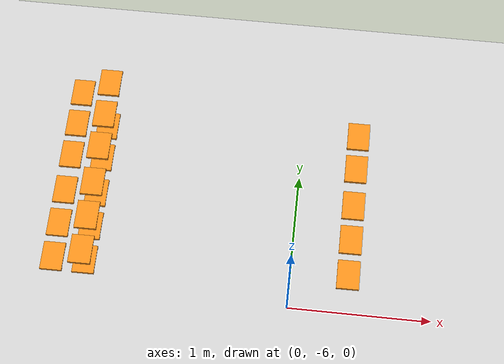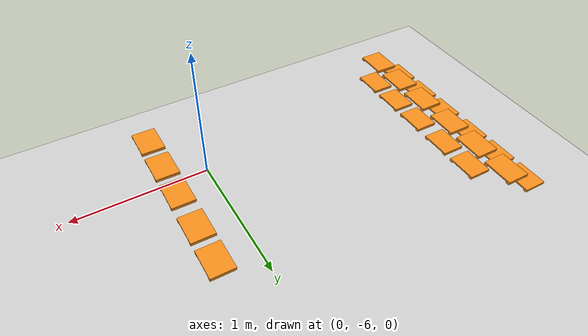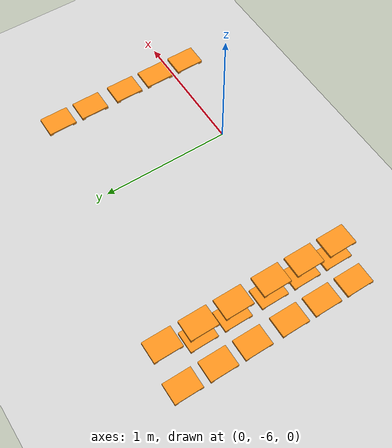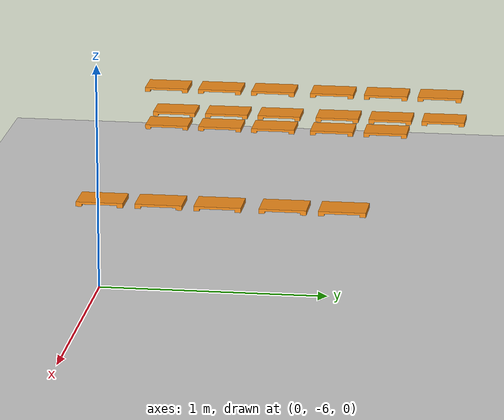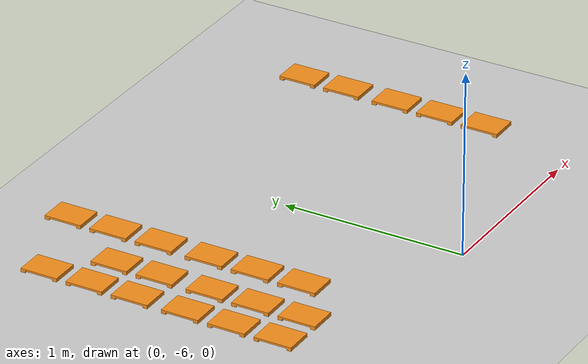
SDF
<sdf version="1.7">
 <world name="default">
  <model name="ground_plane">
   <static>1</static>
   <link name="link">
    <collision name="collision">
     <geometry><plane><normal>0 0 1</normal><size>100 100</size></plane></geometry>
     <surface>
      <contact><collide_bitmask>65535</collide_bitmask></contact>
      <friction><ode><mu>1</mu><mu2>1</mu2></ode></friction>
     </surface>
    </collision>
    <visual name="visual">
     <cast_shadows>0</cast_shadows>
     <geometry><plane><normal>0 0 1</normal><size>100 100</size></plane></geometry>
     <material>
      <script><uri>file://media/materials/scripts/gazebo.material</uri><name>Gazebo/Grey</name></script>
     </material>
    </visual>
   </link>
  </model>
  <model name="pallet_127">
   <pose>-1.61446 -4.887 0.33096 2.2e-05 -0.013419 -8e-06</pose>
   <link name="link">
    <inertial>
     <pose>0 0 0 0 -0 1.571</pose>
     <inertia>
      <ixx>0.00220983</ixx>
      <ixy>0</ixy>
      <ixz>0</ixz>
      <iyy>0.00128087</iyy>
      <iyz>0</iyz>
      <izz>0.00244903</izz>
     </inertia>
     <mass>0.01</mass>
    </inertial>
    <visual name="visual1">
     <cast_shadows>0</cast_shadows>
     <geometry><mesh><uri>model://pallet/meshes/pallet.stl</uri></mesh></geometry>
     <material>
      <script><uri>file://media/materials/scripts/gazebo.material</uri><name>Gazebo/Orange</name></script>
      <shader type="pixel"><normal_map>__default__</normal_map></shader>
      <emissive>0 0 0 1</emissive>
     </material>
     <pose>0 0 -0 0 -0 1.571</pose>
    </visual>
    <collision name="collision_0">
     <pose>0 0 0 0 -0 1.571</pose>
     <geometry><mesh><uri>model://pallet/meshes/pallet.stl</uri></mesh></geometry>
     <surface>
      <friction>
       <ode><mu>1</mu><mu2>1</mu2><fdir1>0 0 0</fdir1><slip1>0</slip1><slip2>0</slip2></ode>
       <torsional>
        <coefficient>1</coefficient>
        <patch_radius>0</patch_radius>
        <surface_radius>0</surface_radius>
        <use_patch_radius>1</use_patch_radius>
        <ode><slip>0</slip></ode>
       </torsional>
      </friction>
      <bounce><restitution_coefficient>0</restitution_coefficient><threshold>1e+06</threshold></bounce>
      <contact>
       <collide_without_contact>0</collide_without_contact>
       <collide_without_contact_bitmask>1</collide_without_contact_bitmask>
       <collide_bitmask>1</collide_bitmask>
       <ode>
        <soft_cfm>0</soft_cfm>
        <soft_erp>0.2</soft_erp>
        <kp>1e+13</kp>
        <kd>1</kd>
        <max_vel>0.01</max_vel>
        <min_depth>0</min_depth>
       </ode>
       <bullet>
        <split_impulse>1</split_impulse>
        <split_impulse_penetration_threshold>-0.01</split_impulse_penetration_threshold>
        <soft_cfm>0</soft_cfm>
        <soft_erp>0.2</soft_erp>
        <kp>1e+13</kp>
        <kd>1</kd>
       </bullet>
      </contact>
     </surface>
    </collision>
   </link>
   <static>0</static>
  </model>
  <model name="pallet_128">
   <pose>-1.61446 -4.637 0.330962 1.1e-05 -0.013419 5e-06</pose>
   <link name="link">
    <inertial>
     <pose>0 0 0 0 -0 1.571</pose>
     <inertia>
      <ixx>0.00220983</ixx>
      <ixy>0</ixy>
      <ixz>0</ixz>
      <iyy>0.00128087</iyy>
      <iyz>0</iyz>
      <izz>0.00244903</izz>
     </inertia>
     <mass>0.01</mass>
    </inertial>
    <visual name="visual1">
     <cast_shadows>0</cast_shadows>
     <geometry><mesh><uri>model://pallet/meshes/pallet.stl</uri></mesh></geometry>
     <material>
      <script><uri>file://media/materials/scripts/gazebo.material</uri><name>Gazebo/Orange</name></script>
      <shader type="pixel"><normal_map>__default__</normal_map></shader>
      <emissive>0 0 0 1</emissive>
     </material>
     <pose>0 0 -0 0 -0 1.571</pose>
    </visual>
    <collision name="collision_0">
     <pose>0 0 0 0 -0 1.571</pose>
     <geometry><mesh><uri>model://pallet/meshes/pallet.stl</uri></mesh></geometry>
     <surface>
      <friction>
       <ode><mu>1</mu><mu2>1</mu2><fdir1>0 0 0</fdir1><slip1>0</slip1><slip2>0</slip2></ode>
       <torsional>
        <coefficient>1</coefficient>
        <patch_radius>0</patch_radius>
        <surface_radius>0</surface_radius>
        <use_patch_radius>1</use_patch_radius>
        <ode><slip>0</slip></ode>
       </torsional>
      </friction>
      <bounce><restitution_coefficient>0</restitution_coefficient><threshold>1e+06</threshold></bounce>
      <contact>
       <collide_without_contact>0</collide_without_contact>
       <collide_without_contact_bitmask>1</collide_without_contact_bitmask>
       <collide_bitmask>1</collide_bitmask>
       <ode>
        <soft_cfm>0</soft_cfm>
        <soft_erp>0.2</soft_erp>
        <kp>1e+13</kp>
        <kd>1</kd>
        <max_vel>0.01</max_vel>
        <min_depth>0</min_depth>
       </ode>
       <bullet>
        <split_impulse>1</split_impulse>
        <split_impulse_penetration_threshold>-0.01</split_impulse_penetration_threshold>
        <soft_cfm>0</soft_cfm>
        <soft_erp>0.2</soft_erp>
        <kp>1e+13</kp>
        <kd>1</kd>
       </bullet>
      </contact>
     </surface>
    </collision>
   </link>
   <static>0</static>
  </model>
  <model name="pallet_129">
   <pose>-1.61445 -5.137 0.330959 3.1e-05 -0.01342 6e-06</pose>
   <link name="link">
    <inertial>
     <pose>0 0 0 0 -0 1.571</pose>
     <inertia>
      <ixx>0.00220983</ixx>
      <ixy>0</ixy>
      <ixz>0</ixz>
      <iyy>0.00128087</iyy>
      <iyz>0</iyz>
      <izz>0.00244903</izz>
     </inertia>
     <mass>0.01</mass>
    </inertial>
    <visual name="visual1">
     <cast_shadows>0</cast_shadows>
     <geometry><mesh><uri>model://pallet/meshes/pallet.stl</uri></mesh></geometry>
     <material>
      <script><uri>file://media/materials/scripts/gazebo.material</uri><name>Gazebo/Orange</name></script>
      <shader type="pixel"><normal_map>__default__</normal_map></shader>
      <emissive>0 0 0 1</emissive>
     </material>
     <pose>0 0 -0 0 -0 1.571</pose>
    </visual>
    <collision name="collision_0">
     <pose>0 0 0 0 -0 1.571</pose>
     <geometry><mesh><uri>model://pallet/meshes/pallet.stl</uri></mesh></geometry>
     <surface>
      <friction>
       <ode><mu>1</mu><mu2>1</mu2><fdir1>0 0 0</fdir1><slip1>0</slip1><slip2>0</slip2></ode>
       <torsional>
        <coefficient>1</coefficient>
        <patch_radius>0</patch_radius>
        <surface_radius>0</surface_radius>
        <use_patch_radius>1</use_patch_radius>
        <ode><slip>0</slip></ode>
       </torsional>
      </friction>
      <bounce><restitution_coefficient>0</restitution_coefficient><threshold>1e+06</threshold></bounce>
      <contact>
       <collide_without_contact>0</collide_without_contact>
       <collide_without_contact_bitmask>1</collide_without_contact_bitmask>
       <collide_bitmask>1</collide_bitmask>
       <ode>
        <soft_cfm>0</soft_cfm>
        <soft_erp>0.2</soft_erp>
        <kp>1e+13</kp>
        <kd>1</kd>
        <max_vel>0.01</max_vel>
        <min_depth>0</min_depth>
       </ode>
       <bullet>
        <split_impulse>1</split_impulse>
        <split_impulse_penetration_threshold>-0.01</split_impulse_penetration_threshold>
        <soft_cfm>0</soft_cfm>
        <soft_erp>0.2</soft_erp>
        <kp>1e+13</kp>
        <kd>1</kd>
       </bullet>
      </contact>
     </surface>
    </collision>
   </link>
   <static>0</static>
  </model>
  <model name="pallet_130">
   <pose>-1.61445 -5.6625 0.330958 1.8e-05 -0.013419 -5e-06</pose>
   <link name="link">
    <inertial>
     <pose>0 0 0 0 -0 1.571</pose>
     <inertia>
      <ixx>0.00220983</ixx>
      <ixy>0</ixy>
      <ixz>0</ixz>
      <iyy>0.00128087</iyy>
      <iyz>0</iyz>
      <izz>0.00244903</izz>
     </inertia>
     <mass>0.01</mass>
    </inertial>
    <visual name="visual1">
     <cast_shadows>0</cast_shadows>
     <geometry><mesh><uri>model://pallet/meshes/pallet.stl</uri></mesh></geometry>
     <material>
      <script><uri>file://media/materials/scripts/gazebo.material</uri><name>Gazebo/Orange</name></script>
      <shader type="pixel"><normal_map>__default__</normal_map></shader>
      <emissive>0 0 0 1</emissive>
     </material>
     <pose>0 0 -0 0 -0 1.571</pose>
    </visual>
    <collision name="collision_0">
     <pose>0 0 0 0 -0 1.571</pose>
     <geometry><mesh><uri>model://pallet/meshes/pallet.stl</uri></mesh></geometry>
     <surface>
      <friction>
       <ode><mu>1</mu><mu2>1</mu2><fdir1>0 0 0</fdir1><slip1>0</slip1><slip2>0</slip2></ode>
       <torsional>
        <coefficient>1</coefficient>
        <patch_radius>0</patch_radius>
        <surface_radius>0</surface_radius>
        <use_patch_radius>1</use_patch_radius>
        <ode><slip>0</slip></ode>
       </torsional>
      </friction>
      <bounce><restitution_coefficient>0</restitution_coefficient><threshold>1e+06</threshold></bounce>
      <contact>
       <collide_without_contact>0</collide_without_contact>
       <collide_without_contact_bitmask>1</collide_without_contact_bitmask>
       <collide_bitmask>1</collide_bitmask>
       <ode>
        <soft_cfm>0</soft_cfm>
        <soft_erp>0.2</soft_erp>
        <kp>1e+13</kp>
        <kd>1</kd>
        <max_vel>0.01</max_vel>
        <min_depth>0</min_depth>
       </ode>
       <bullet>
        <split_impulse>1</split_impulse>
        <split_impulse_penetration_threshold>-0.01</split_impulse_penetration_threshold>
        <soft_cfm>0</soft_cfm>
        <soft_erp>0.2</soft_erp>
        <kp>1e+13</kp>
        <kd>1</kd>
       </bullet>
      </contact>
     </surface>
    </collision>
   </link>
   <static>0</static>
  </model>
  <model name="pallet_131">
   <pose>-1.61445 -5.4125 0.33096 1.4e-05 -0.013418 1e-06</pose>
   <link name="link">
    <inertial>
     <pose>0 0 0 0 -0 1.571</pose>
     <inertia>
      <ixx>0.00220983</ixx>
      <ixy>0</ixy>
      <ixz>0</ixz>
      <iyy>0.00128087</iyy>
      <iyz>0</iyz>
      <izz>0.00244903</izz>
     </inertia>
     <mass>0.01</mass>
    </inertial>
    <visual name="visual1">
     <cast_shadows>0</cast_shadows>
     <geometry><mesh><uri>model://pallet/meshes/pallet.stl</uri></mesh></geometry>
     <material>
      <script><uri>file://media/materials/scripts/gazebo.material</uri><name>Gazebo/Orange</name></script>
      <shader type="pixel"><normal_map>__default__</normal_map></shader>
      <emissive>0 0 0 1</emissive>
     </material>
     <pose>0 0 -0 0 -0 1.571</pose>
    </visual>
    <collision name="collision_0">
     <pose>0 0 0 0 -0 1.571</pose>
     <geometry><mesh><uri>model://pallet/meshes/pallet.stl</uri></mesh></geometry>
     <surface>
      <friction>
       <ode><mu>1</mu><mu2>1</mu2><fdir1>0 0 0</fdir1><slip1>0</slip1><slip2>0</slip2></ode>
       <torsional>
        <coefficient>1</coefficient>
        <patch_radius>0</patch_radius>
        <surface_radius>0</surface_radius>
        <use_patch_radius>1</use_patch_radius>
        <ode><slip>0</slip></ode>
       </torsional>
      </friction>
      <bounce><restitution_coefficient>0</restitution_coefficient><threshold>1e+06</threshold></bounce>
      <contact>
       <collide_without_contact>0</collide_without_contact>
       <collide_without_contact_bitmask>1</collide_without_contact_bitmask>
       <collide_bitmask>1</collide_bitmask>
       <ode>
        <soft_cfm>0</soft_cfm>
        <soft_erp>0.2</soft_erp>
        <kp>1e+13</kp>
        <kd>1</kd>
        <max_vel>0.01</max_vel>
        <min_depth>0</min_depth>
       </ode>
       <bullet>
        <split_impulse>1</split_impulse>
        <split_impulse_penetration_threshold>-0.01</split_impulse_penetration_threshold>
        <soft_cfm>0</soft_cfm>
        <soft_erp>0.2</soft_erp>
        <kp>1e+13</kp>
        <kd>1</kd>
       </bullet>
      </contact>
     </surface>
    </collision>
   </link>
   <static>0</static>
  </model>
  <model name="pallet_132">
   <pose>-1.61445 -5.9125 0.330957 2.3e-05 -0.013418 6e-06</pose>
   <link name="link">
    <inertial>
     <pose>0 0 0 0 -0 1.571</pose>
     <inertia>
      <ixx>0.00220983</ixx>
      <ixy>0</ixy>
      <ixz>0</ixz>
      <iyy>0.00128087</iyy>
      <iyz>0</iyz>
      <izz>0.00244903</izz>
     </inertia>
     <mass>0.01</mass>
    </inertial>
    <visual name="visual1">
     <cast_shadows>0</cast_shadows>
     <geometry><mesh><uri>model://pallet/meshes/pallet.stl</uri></mesh></geometry>
     <material>
      <script><uri>file://media/materials/scripts/gazebo.material</uri><name>Gazebo/Orange</name></script>
      <shader type="pixel"><normal_map>__default__</normal_map></shader>
      <emissive>0 0 0 1</emissive>
     </material>
     <pose>0 0 -0 0 -0 1.571</pose>
    </visual>
    <collision name="collision_0">
     <pose>0 0 0 0 -0 1.571</pose>
     <geometry><mesh><uri>model://pallet/meshes/pallet.stl</uri></mesh></geometry>
     <surface>
      <friction>
       <ode><mu>1</mu><mu2>1</mu2><fdir1>0 0 0</fdir1><slip1>0</slip1><slip2>0</slip2></ode>
       <torsional>
        <coefficient>1</coefficient>
        <patch_radius>0</patch_radius>
        <surface_radius>0</surface_radius>
        <use_patch_radius>1</use_patch_radius>
        <ode><slip>0</slip></ode>
       </torsional>
      </friction>
      <bounce><restitution_coefficient>0</restitution_coefficient><threshold>1e+06</threshold></bounce>
      <contact>
       <collide_without_contact>0</collide_without_contact>
       <collide_without_contact_bitmask>1</collide_without_contact_bitmask>
       <collide_bitmask>1</collide_bitmask>
       <ode>
        <soft_cfm>0</soft_cfm>
        <soft_erp>0.2</soft_erp>
        <kp>1e+13</kp>
        <kd>1</kd>
        <max_vel>0.01</max_vel>
        <min_depth>0</min_depth>
       </ode>
       <bullet>
        <split_impulse>1</split_impulse>
        <split_impulse_penetration_threshold>-0.01</split_impulse_penetration_threshold>
        <soft_cfm>0</soft_cfm>
        <soft_erp>0.2</soft_erp>
        <kp>1e+13</kp>
        <kd>1</kd>
       </bullet>
      </contact>
     </surface>
    </collision>
   </link>
   <static>0</static>
  </model>
  <model name="pallet_139">
   <pose>-1.39424 -4.887 0.331011 2.4e-05 -0.012778 -8e-06</pose>
   <link name="link">
    <inertial>
     <pose>0 0 0 0 -0 1.571</pose>
     <inertia>
      <ixx>0.00220983</ixx>
      <ixy>0</ixy>
      <ixz>0</ixz>
      <iyy>0.00128087</iyy>
      <iyz>0</iyz>
      <izz>0.00244903</izz>
     </inertia>
     <mass>0.01</mass>
    </inertial>
    <visual name="visual1">
     <cast_shadows>0</cast_shadows>
     <geometry><mesh><uri>model://pallet/meshes/pallet.stl</uri></mesh></geometry>
     <material>
      <script><uri>file://media/materials/scripts/gazebo.material</uri><name>Gazebo/Orange</name></script>
      <shader type="pixel"><normal_map>__default__</normal_map></shader>
      <emissive>0 0 0 1</emissive>
     </material>
     <pose>0 0 -0 0 -0 1.571</pose>
    </visual>
    <collision name="collision_0">
     <pose>0 0 0 0 -0 1.571</pose>
     <geometry><mesh><uri>model://pallet/meshes/pallet.stl</uri></mesh></geometry>
     <surface>
      <friction>
       <ode><mu>1</mu><mu2>1</mu2><fdir1>0 0 0</fdir1><slip1>0</slip1><slip2>0</slip2></ode>
       <torsional>
        <coefficient>1</coefficient>
        <patch_radius>0</patch_radius>
        <surface_radius>0</surface_radius>
        <use_patch_radius>1</use_patch_radius>
        <ode><slip>0</slip></ode>
       </torsional>
      </friction>
      <bounce><restitution_coefficient>0</restitution_coefficient><threshold>1e+06</threshold></bounce>
      <contact>
       <collide_without_contact>0</collide_without_contact>
       <collide_without_contact_bitmask>1</collide_without_contact_bitmask>
       <collide_bitmask>1</collide_bitmask>
       <ode>
        <soft_cfm>0</soft_cfm>
        <soft_erp>0.2</soft_erp>
        <kp>1e+13</kp>
        <kd>1</kd>
        <max_vel>0.01</max_vel>
        <min_depth>0</min_depth>
       </ode>
       <bullet>
        <split_impulse>1</split_impulse>
        <split_impulse_penetration_threshold>-0.01</split_impulse_penetration_threshold>
        <soft_cfm>0</soft_cfm>
        <soft_erp>0.2</soft_erp>
        <kp>1e+13</kp>
        <kd>1</kd>
       </bullet>
      </contact>
     </surface>
    </collision>
   </link>
   <static>0</static>
  </model>
  <model name="pallet_141">
   <pose>-1.39424 -5.137 0.331011 2e-05 -0.012778 3e-06</pose>
   <link name="link">
    <inertial>
     <pose>0 0 0 0 -0 1.571</pose>
     <inertia>
      <ixx>0.00220983</ixx>
      <ixy>0</ixy>
      <ixz>0</ixz>
      <iyy>0.00128087</iyy>
      <iyz>0</iyz>
      <izz>0.00244903</izz>
     </inertia>
     <mass>0.01</mass>
    </inertial>
    <visual name="visual1">
     <cast_shadows>0</cast_shadows>
     <geometry><mesh><uri>model://pallet/meshes/pallet.stl</uri></mesh></geometry>
     <material>
      <script><uri>file://media/materials/scripts/gazebo.material</uri><name>Gazebo/Orange</name></script>
      <shader type="pixel"><normal_map>__default__</normal_map></shader>
      <emissive>0 0 0 1</emissive>
     </material>
     <pose>0 0 -0 0 -0 1.571</pose>
    </visual>
    <collision name="collision_0">
     <pose>0 0 0 0 -0 1.571</pose>
     <geometry><mesh><uri>model://pallet/meshes/pallet.stl</uri></mesh></geometry>
     <surface>
      <friction>
       <ode><mu>1</mu><mu2>1</mu2><fdir1>0 0 0</fdir1><slip1>0</slip1><slip2>0</slip2></ode>
       <torsional>
        <coefficient>1</coefficient>
        <patch_radius>0</patch_radius>
        <surface_radius>0</surface_radius>
        <use_patch_radius>1</use_patch_radius>
        <ode><slip>0</slip></ode>
       </torsional>
      </friction>
      <bounce><restitution_coefficient>0</restitution_coefficient><threshold>1e+06</threshold></bounce>
      <contact>
       <collide_without_contact>0</collide_without_contact>
       <collide_without_contact_bitmask>1</collide_without_contact_bitmask>
       <collide_bitmask>1</collide_bitmask>
       <ode>
        <soft_cfm>0</soft_cfm>
        <soft_erp>0.2</soft_erp>
        <kp>1e+13</kp>
        <kd>1</kd>
        <max_vel>0.01</max_vel>
        <min_depth>0</min_depth>
       </ode>
       <bullet>
        <split_impulse>1</split_impulse>
        <split_impulse_penetration_threshold>-0.01</split_impulse_penetration_threshold>
        <soft_cfm>0</soft_cfm>
        <soft_erp>0.2</soft_erp>
        <kp>1e+13</kp>
        <kd>1</kd>
       </bullet>
      </contact>
     </surface>
    </collision>
   </link>
   <static>0</static>
  </model>
  <model name="pallet_142">
   <pose>-1.39424 -5.6625 0.33101 2.3e-05 -0.012777 -8e-06</pose>
   <link name="link">
    <inertial>
     <pose>0 0 0 0 -0 1.571</pose>
     <inertia>
      <ixx>0.00220983</ixx>
      <ixy>0</ixy>
      <ixz>0</ixz>
      <iyy>0.00128087</iyy>
      <iyz>0</iyz>
      <izz>0.00244903</izz>
     </inertia>
     <mass>0.01</mass>
    </inertial>
    <visual name="visual1">
     <cast_shadows>0</cast_shadows>
     <geometry><mesh><uri>model://pallet/meshes/pallet.stl</uri></mesh></geometry>
     <material>
      <script><uri>file://media/materials/scripts/gazebo.material</uri><name>Gazebo/Orange</name></script>
      <shader type="pixel"><normal_map>__default__</normal_map></shader>
      <emissive>0 0 0 1</emissive>
     </material>
     <pose>0 0 -0 0 -0 1.571</pose>
    </visual>
    <collision name="collision_0">
     <pose>0 0 0 0 -0 1.571</pose>
     <geometry><mesh><uri>model://pallet/meshes/pallet.stl</uri></mesh></geometry>
     <surface>
      <friction>
       <ode><mu>1</mu><mu2>1</mu2><fdir1>0 0 0</fdir1><slip1>0</slip1><slip2>0</slip2></ode>
       <torsional>
        <coefficient>1</coefficient>
        <patch_radius>0</patch_radius>
        <surface_radius>0</surface_radius>
        <use_patch_radius>1</use_patch_radius>
        <ode><slip>0</slip></ode>
       </torsional>
      </friction>
      <bounce><restitution_coefficient>0</restitution_coefficient><threshold>1e+06</threshold></bounce>
      <contact>
       <collide_without_contact>0</collide_without_contact>
       <collide_without_contact_bitmask>1</collide_without_contact_bitmask>
       <collide_bitmask>1</collide_bitmask>
       <ode>
        <soft_cfm>0</soft_cfm>
        <soft_erp>0.2</soft_erp>
        <kp>1e+13</kp>
        <kd>1</kd>
        <max_vel>0.01</max_vel>
        <min_depth>0</min_depth>
       </ode>
       <bullet>
        <split_impulse>1</split_impulse>
        <split_impulse_penetration_threshold>-0.01</split_impulse_penetration_threshold>
        <soft_cfm>0</soft_cfm>
        <soft_erp>0.2</soft_erp>
        <kp>1e+13</kp>
        <kd>1</kd>
       </bullet>
      </contact>
     </surface>
    </collision>
   </link>
   <static>0</static>
  </model>
  <model name="pallet_143">
   <pose>-1.39424 -5.4125 0.331011 1.5e-05 -0.012779 3e-06</pose>
   <link name="link">
    <inertial>
     <pose>0 0 0 0 -0 1.571</pose>
     <inertia>
      <ixx>0.00220983</ixx>
      <ixy>0</ixy>
      <ixz>0</ixz>
      <iyy>0.00128087</iyy>
      <iyz>0</iyz>
      <izz>0.00244903</izz>
     </inertia>
     <mass>0.01</mass>
    </inertial>
    <visual name="visual1">
     <cast_shadows>0</cast_shadows>
     <geometry><mesh><uri>model://pallet/meshes/pallet.stl</uri></mesh></geometry>
     <material>
      <script><uri>file://media/materials/scripts/gazebo.material</uri><name>Gazebo/Orange</name></script>
      <shader type="pixel"><normal_map>__default__</normal_map></shader>
      <emissive>0 0 0 1</emissive>
     </material>
     <pose>0 0 -0 0 -0 1.571</pose>
    </visual>
    <collision name="collision_0">
     <pose>0 0 0 0 -0 1.571</pose>
     <geometry><mesh><uri>model://pallet/meshes/pallet.stl</uri></mesh></geometry>
     <surface>
      <friction>
       <ode><mu>1</mu><mu2>1</mu2><fdir1>0 0 0</fdir1><slip1>0</slip1><slip2>0</slip2></ode>
       <torsional>
        <coefficient>1</coefficient>
        <patch_radius>0</patch_radius>
        <surface_radius>0</surface_radius>
        <use_patch_radius>1</use_patch_radius>
        <ode><slip>0</slip></ode>
       </torsional>
      </friction>
      <bounce><restitution_coefficient>0</restitution_coefficient><threshold>1e+06</threshold></bounce>
      <contact>
       <collide_without_contact>0</collide_without_contact>
       <collide_without_contact_bitmask>1</collide_without_contact_bitmask>
       <collide_bitmask>1</collide_bitmask>
       <ode>
        <soft_cfm>0</soft_cfm>
        <soft_erp>0.2</soft_erp>
        <kp>1e+13</kp>
        <kd>1</kd>
        <max_vel>0.01</max_vel>
        <min_depth>0</min_depth>
       </ode>
       <bullet>
        <split_impulse>1</split_impulse>
        <split_impulse_penetration_threshold>-0.01</split_impulse_penetration_threshold>
        <soft_cfm>0</soft_cfm>
        <soft_erp>0.2</soft_erp>
        <kp>1e+13</kp>
        <kd>1</kd>
       </bullet>
      </contact>
     </surface>
    </collision>
   </link>
   <static>0</static>
  </model>
  <model name="pallet_144">
   <pose>-1.39423 -5.9125 0.33101 1.9e-05 -0.01278 3e-06</pose>
   <link name="link">
    <inertial>
     <pose>0 0 0 0 -0 1.571</pose>
     <inertia>
      <ixx>0.00220983</ixx>
      <ixy>0</ixy>
      <ixz>0</ixz>
      <iyy>0.00128087</iyy>
      <iyz>0</iyz>
      <izz>0.00244903</izz>
     </inertia>
     <mass>0.01</mass>
    </inertial>
    <visual name="visual1">
     <cast_shadows>0</cast_shadows>
     <geometry><mesh><uri>model://pallet/meshes/pallet.stl</uri></mesh></geometry>
     <material>
      <script><uri>file://media/materials/scripts/gazebo.material</uri><name>Gazebo/Orange</name></script>
      <shader type="pixel"><normal_map>__default__</normal_map></shader>
      <emissive>0 0 0 1</emissive>
     </material>
     <pose>0 0 -0 0 -0 1.571</pose>
    </visual>
    <collision name="collision_0">
     <pose>0 0 0 0 -0 1.571</pose>
     <geometry><mesh><uri>model://pallet/meshes/pallet.stl</uri></mesh></geometry>
     <surface>
      <friction>
       <ode><mu>1</mu><mu2>1</mu2><fdir1>0 0 0</fdir1><slip1>0</slip1><slip2>0</slip2></ode>
       <torsional>
        <coefficient>1</coefficient>
        <patch_radius>0</patch_radius>
        <surface_radius>0</surface_radius>
        <use_patch_radius>1</use_patch_radius>
        <ode><slip>0</slip></ode>
       </torsional>
      </friction>
      <bounce><restitution_coefficient>0</restitution_coefficient><threshold>1e+06</threshold></bounce>
      <contact>
       <collide_without_contact>0</collide_without_contact>
       <collide_without_contact_bitmask>1</collide_without_contact_bitmask>
       <collide_bitmask>1</collide_bitmask>
       <ode>
        <soft_cfm>0</soft_cfm>
        <soft_erp>0.2</soft_erp>
        <kp>1e+13</kp>
        <kd>1</kd>
        <max_vel>0.01</max_vel>
        <min_depth>0</min_depth>
       </ode>
       <bullet>
        <split_impulse>1</split_impulse>
        <split_impulse_penetration_threshold>-0.01</split_impulse_penetration_threshold>
        <soft_cfm>0</soft_cfm>
        <soft_erp>0.2</soft_erp>
        <kp>1e+13</kp>
        <kd>1</kd>
       </bullet>
      </contact>
     </surface>
    </collision>
   </link>
   <static>0</static>
  </model>
  <model name="pallet_151">
   <pose>-1.39655 -4.887 0.510996 4.1e-05 -0.012779 -1e-05</pose>
   <link name="link">
    <inertial>
     <pose>0 0 0 0 -0 1.571</pose>
     <inertia>
      <ixx>0.00220983</ixx>
      <ixy>0</ixy>
      <ixz>0</ixz>
      <iyy>0.00128087</iyy>
      <iyz>0</iyz>
      <izz>0.00244903</izz>
     </inertia>
     <mass>0.01</mass>
    </inertial>
    <visual name="visual1">
     <cast_shadows>0</cast_shadows>
     <geometry><mesh><uri>model://pallet/meshes/pallet.stl</uri></mesh></geometry>
     <material>
      <script><uri>file://media/materials/scripts/gazebo.material</uri><name>Gazebo/Orange</name></script>
      <shader type="pixel"><normal_map>__default__</normal_map></shader>
      <emissive>0 0 0 1</emissive>
     </material>
     <pose>0 0 -0 0 -0 1.571</pose>
    </visual>
    <collision name="collision_0">
     <pose>0 0 0 0 -0 1.571</pose>
     <geometry><mesh><uri>model://pallet/meshes/pallet.stl</uri></mesh></geometry>
     <surface>
      <friction>
       <ode><mu>1</mu><mu2>1</mu2><fdir1>0 0 0</fdir1><slip1>0</slip1><slip2>0</slip2></ode>
       <torsional>
        <coefficient>1</coefficient>
        <patch_radius>0</patch_radius>
        <surface_radius>0</surface_radius>
        <use_patch_radius>1</use_patch_radius>
        <ode><slip>0</slip></ode>
       </torsional>
      </friction>
      <bounce><restitution_coefficient>0</restitution_coefficient><threshold>1e+06</threshold></bounce>
      <contact>
       <collide_without_contact>0</collide_without_contact>
       <collide_without_contact_bitmask>1</collide_without_contact_bitmask>
       <collide_bitmask>1</collide_bitmask>
       <ode>
        <soft_cfm>0</soft_cfm>
        <soft_erp>0.2</soft_erp>
        <kp>1e+13</kp>
        <kd>1</kd>
        <max_vel>0.01</max_vel>
        <min_depth>0</min_depth>
       </ode>
       <bullet>
        <split_impulse>1</split_impulse>
        <split_impulse_penetration_threshold>-0.01</split_impulse_penetration_threshold>
        <soft_cfm>0</soft_cfm>
        <soft_erp>0.2</soft_erp>
        <kp>1e+13</kp>
        <kd>1</kd>
       </bullet>
      </contact>
     </surface>
    </collision>
   </link>
   <static>0</static>
  </model>
  <model name="pallet_152">
   <pose>-1.39655 -4.637 0.510998 1.7e-05 -0.012779 3e-06</pose>
   <link name="link">
    <inertial>
     <pose>0 0 0 0 -0 1.571</pose>
     <inertia>
      <ixx>0.00220983</ixx>
      <ixy>0</ixy>
      <ixz>0</ixz>
      <iyy>0.00128087</iyy>
      <iyz>0</iyz>
      <izz>0.00244903</izz>
     </inertia>
     <mass>0.01</mass>
    </inertial>
    <visual name="visual1">
     <cast_shadows>0</cast_shadows>
     <geometry><mesh><uri>model://pallet/meshes/pallet.stl</uri></mesh></geometry>
     <material>
      <script><uri>file://media/materials/scripts/gazebo.material</uri><name>Gazebo/Orange</name></script>
      <shader type="pixel"><normal_map>__default__</normal_map></shader>
      <emissive>0 0 0 1</emissive>
     </material>
     <pose>0 0 -0 0 -0 1.571</pose>
    </visual>
    <collision name="collision_0">
     <pose>0 0 0 0 -0 1.571</pose>
     <geometry><mesh><uri>model://pallet/meshes/pallet.stl</uri></mesh></geometry>
     <surface>
      <friction>
       <ode><mu>1</mu><mu2>1</mu2><fdir1>0 0 0</fdir1><slip1>0</slip1><slip2>0</slip2></ode>
       <torsional>
        <coefficient>1</coefficient>
        <patch_radius>0</patch_radius>
        <surface_radius>0</surface_radius>
        <use_patch_radius>1</use_patch_radius>
        <ode><slip>0</slip></ode>
       </torsional>
      </friction>
      <bounce><restitution_coefficient>0</restitution_coefficient><threshold>1e+06</threshold></bounce>
      <contact>
       <collide_without_contact>0</collide_without_contact>
       <collide_without_contact_bitmask>1</collide_without_contact_bitmask>
       <collide_bitmask>1</collide_bitmask>
       <ode>
        <soft_cfm>0</soft_cfm>
        <soft_erp>0.2</soft_erp>
        <kp>1e+13</kp>
        <kd>1</kd>
        <max_vel>0.01</max_vel>
        <min_depth>0</min_depth>
       </ode>
       <bullet>
        <split_impulse>1</split_impulse>
        <split_impulse_penetration_threshold>-0.01</split_impulse_penetration_threshold>
        <soft_cfm>0</soft_cfm>
        <soft_erp>0.2</soft_erp>
        <kp>1e+13</kp>
        <kd>1</kd>
       </bullet>
      </contact>
     </surface>
    </collision>
   </link>
   <static>0</static>
  </model>
  <model name="pallet_153">
   <pose>-1.39654 -5.137 0.510996 2.4e-05 -0.012779 -3e-06</pose>
   <link name="link">
    <inertial>
     <pose>0 0 0 0 -0 1.571</pose>
     <inertia>
      <ixx>0.00220983</ixx>
      <ixy>0</ixy>
      <ixz>0</ixz>
      <iyy>0.00128087</iyy>
      <iyz>0</iyz>
      <izz>0.00244903</izz>
     </inertia>
     <mass>0.01</mass>
    </inertial>
    <visual name="visual1">
     <cast_shadows>0</cast_shadows>
     <geometry><mesh><uri>model://pallet/meshes/pallet.stl</uri></mesh></geometry>
     <material>
      <script><uri>file://media/materials/scripts/gazebo.material</uri><name>Gazebo/Orange</name></script>
      <shader type="pixel"><normal_map>__default__</normal_map></shader>
      <emissive>0 0 0 1</emissive>
     </material>
     <pose>0 0 -0 0 -0 1.571</pose>
    </visual>
    <collision name="collision_0">
     <pose>0 0 0 0 -0 1.571</pose>
     <geometry><mesh><uri>model://pallet/meshes/pallet.stl</uri></mesh></geometry>
     <surface>
      <friction>
       <ode><mu>1</mu><mu2>1</mu2><fdir1>0 0 0</fdir1><slip1>0</slip1><slip2>0</slip2></ode>
       <torsional>
        <coefficient>1</coefficient>
        <patch_radius>0</patch_radius>
        <surface_radius>0</surface_radius>
        <use_patch_radius>1</use_patch_radius>
        <ode><slip>0</slip></ode>
       </torsional>
      </friction>
      <bounce><restitution_coefficient>0</restitution_coefficient><threshold>1e+06</threshold></bounce>
      <contact>
       <collide_without_contact>0</collide_without_contact>
       <collide_without_contact_bitmask>1</collide_without_contact_bitmask>
       <collide_bitmask>1</collide_bitmask>
       <ode>
        <soft_cfm>0</soft_cfm>
        <soft_erp>0.2</soft_erp>
        <kp>1e+13</kp>
        <kd>1</kd>
        <max_vel>0.01</max_vel>
        <min_depth>0</min_depth>
       </ode>
       <bullet>
        <split_impulse>1</split_impulse>
        <split_impulse_penetration_threshold>-0.01</split_impulse_penetration_threshold>
        <soft_cfm>0</soft_cfm>
        <soft_erp>0.2</soft_erp>
        <kp>1e+13</kp>
        <kd>1</kd>
       </bullet>
      </contact>
     </surface>
    </collision>
   </link>
   <static>0</static>
  </model>
  <model name="pallet_154">
   <pose>-1.39654 -5.6625 0.510994 3.9e-05 -0.012779 -1.6e-05</pose>
   <link name="link">
    <inertial>
     <pose>0 0 0 0 -0 1.571</pose>
     <inertia>
      <ixx>0.00220983</ixx>
      <ixy>0</ixy>
      <ixz>0</ixz>
      <iyy>0.00128087</iyy>
      <iyz>0</iyz>
      <izz>0.00244903</izz>
     </inertia>
     <mass>0.01</mass>
    </inertial>
    <visual name="visual1">
     <cast_shadows>0</cast_shadows>
     <geometry><mesh><uri>model://pallet/meshes/pallet.stl</uri></mesh></geometry>
     <material>
      <script><uri>file://media/materials/scripts/gazebo.material</uri><name>Gazebo/Orange</name></script>
      <shader type="pixel"><normal_map>__default__</normal_map></shader>
      <emissive>0 0 0 1</emissive>
     </material>
     <pose>0 0 -0 0 -0 1.571</pose>
    </visual>
    <collision name="collision_0">
     <pose>0 0 0 0 -0 1.571</pose>
     <geometry><mesh><uri>model://pallet/meshes/pallet.stl</uri></mesh></geometry>
     <surface>
      <friction>
       <ode><mu>1</mu><mu2>1</mu2><fdir1>0 0 0</fdir1><slip1>0</slip1><slip2>0</slip2></ode>
       <torsional>
        <coefficient>1</coefficient>
        <patch_radius>0</patch_radius>
        <surface_radius>0</surface_radius>
        <use_patch_radius>1</use_patch_radius>
        <ode><slip>0</slip></ode>
       </torsional>
      </friction>
      <bounce><restitution_coefficient>0</restitution_coefficient><threshold>1e+06</threshold></bounce>
      <contact>
       <collide_without_contact>0</collide_without_contact>
       <collide_without_contact_bitmask>1</collide_without_contact_bitmask>
       <collide_bitmask>1</collide_bitmask>
       <ode>
        <soft_cfm>0</soft_cfm>
        <soft_erp>0.2</soft_erp>
        <kp>1e+13</kp>
        <kd>1</kd>
        <max_vel>0.01</max_vel>
        <min_depth>0</min_depth>
       </ode>
       <bullet>
        <split_impulse>1</split_impulse>
        <split_impulse_penetration_threshold>-0.01</split_impulse_penetration_threshold>
        <soft_cfm>0</soft_cfm>
        <soft_erp>0.2</soft_erp>
        <kp>1e+13</kp>
        <kd>1</kd>
       </bullet>
      </contact>
     </surface>
    </collision>
   </link>
   <static>0</static>
  </model>
  <model name="pallet_155">
   <pose>-1.39654 -5.4125 0.510997 9e-06 -0.012779 8e-06</pose>
   <link name="link">
    <inertial>
     <pose>0 0 0 0 -0 1.571</pose>
     <inertia>
      <ixx>0.00220983</ixx>
      <ixy>0</ixy>
      <ixz>0</ixz>
      <iyy>0.00128087</iyy>
      <iyz>0</iyz>
      <izz>0.00244903</izz>
     </inertia>
     <mass>0.01</mass>
    </inertial>
    <visual name="visual1">
     <cast_shadows>0</cast_shadows>
     <geometry><mesh><uri>model://pallet/meshes/pallet.stl</uri></mesh></geometry>
     <material>
      <script><uri>file://media/materials/scripts/gazebo.material</uri><name>Gazebo/Orange</name></script>
      <shader type="pixel"><normal_map>__default__</normal_map></shader>
      <emissive>0 0 0 1</emissive>
     </material>
     <pose>0 0 -0 0 -0 1.571</pose>
    </visual>
    <collision name="collision_0">
     <pose>0 0 0 0 -0 1.571</pose>
     <geometry><mesh><uri>model://pallet/meshes/pallet.stl</uri></mesh></geometry>
     <surface>
      <friction>
       <ode><mu>1</mu><mu2>1</mu2><fdir1>0 0 0</fdir1><slip1>0</slip1><slip2>0</slip2></ode>
       <torsional>
        <coefficient>1</coefficient>
        <patch_radius>0</patch_radius>
        <surface_radius>0</surface_radius>
        <use_patch_radius>1</use_patch_radius>
        <ode><slip>0</slip></ode>
       </torsional>
      </friction>
      <bounce><restitution_coefficient>0</restitution_coefficient><threshold>1e+06</threshold></bounce>
      <contact>
       <collide_without_contact>0</collide_without_contact>
       <collide_without_contact_bitmask>1</collide_without_contact_bitmask>
       <collide_bitmask>1</collide_bitmask>
       <ode>
        <soft_cfm>0</soft_cfm>
        <soft_erp>0.2</soft_erp>
        <kp>1e+13</kp>
        <kd>1</kd>
        <max_vel>0.01</max_vel>
        <min_depth>0</min_depth>
       </ode>
       <bullet>
        <split_impulse>1</split_impulse>
        <split_impulse_penetration_threshold>-0.01</split_impulse_penetration_threshold>
        <soft_cfm>0</soft_cfm>
        <soft_erp>0.2</soft_erp>
        <kp>1e+13</kp>
        <kd>1</kd>
       </bullet>
      </contact>
     </surface>
    </collision>
   </link>
   <static>0</static>
  </model>
  <model name="pallet_156">
   <pose>-1.39654 -5.9125 0.510996 4e-06 -0.012784 1.5e-05</pose>
   <link name="link">
    <inertial>
     <pose>0 0 0 0 -0 1.571</pose>
     <inertia>
      <ixx>0.00220983</ixx>
      <ixy>0</ixy>
      <ixz>0</ixz>
      <iyy>0.00128087</iyy>
      <iyz>0</iyz>
      <izz>0.00244903</izz>
     </inertia>
     <mass>0.01</mass>
    </inertial>
    <visual name="visual1">
     <cast_shadows>0</cast_shadows>
     <geometry><mesh><uri>model://pallet/meshes/pallet.stl</uri></mesh></geometry>
     <material>
      <script><uri>file://media/materials/scripts/gazebo.material</uri><name>Gazebo/Orange</name></script>
      <shader type="pixel"><normal_map>__default__</normal_map></shader>
      <emissive>0 0 0 1</emissive>
     </material>
     <pose>0 0 -0 0 -0 1.571</pose>
    </visual>
    <collision name="collision_0">
     <pose>0 0 0 0 -0 1.571</pose>
     <geometry><mesh><uri>model://pallet/meshes/pallet.stl</uri></mesh></geometry>
     <surface>
      <friction>
       <ode><mu>1</mu><mu2>1</mu2><fdir1>0 0 0</fdir1><slip1>0</slip1><slip2>0</slip2></ode>
       <torsional>
        <coefficient>1</coefficient>
        <patch_radius>0</patch_radius>
        <surface_radius>0</surface_radius>
        <use_patch_radius>1</use_patch_radius>
        <ode><slip>0</slip></ode>
       </torsional>
      </friction>
      <bounce><restitution_coefficient>0</restitution_coefficient><threshold>1e+06</threshold></bounce>
      <contact>
       <collide_without_contact>0</collide_without_contact>
       <collide_without_contact_bitmask>1</collide_without_contact_bitmask>
       <collide_bitmask>1</collide_bitmask>
       <ode>
        <soft_cfm>0</soft_cfm>
        <soft_erp>0.2</soft_erp>
        <kp>1e+13</kp>
        <kd>1</kd>
        <max_vel>0.01</max_vel>
        <min_depth>0</min_depth>
       </ode>
       <bullet>
        <split_impulse>1</split_impulse>
        <split_impulse_penetration_threshold>-0.01</split_impulse_penetration_threshold>
        <soft_cfm>0</soft_cfm>
        <soft_erp>0.2</soft_erp>
        <kp>1e+13</kp>
        <kd>1</kd>
       </bullet>
      </contact>
     </surface>
    </collision>
   </link>
   <static>0</static>
  </model>
  <model name="pallet_187">
   <pose>0.383453 -4.887 0.510994 3.1e-05 -0.012783 -1.8e-05</pose>
   <link name="link">
    <inertial>
     <pose>0 0 0 0 -0 1.571</pose>
     <inertia>
      <ixx>0.00220983</ixx>
      <ixy>0</ixy>
      <ixz>0</ixz>
      <iyy>0.00128087</iyy>
      <iyz>0</iyz>
      <izz>0.00244903</izz>
     </inertia>
     <mass>0.01</mass>
    </inertial>
    <visual name="visual1">
     <cast_shadows>0</cast_shadows>
     <geometry><mesh><uri>model://pallet/meshes/pallet.stl</uri></mesh></geometry>
     <material>
      <script><uri>file://media/materials/scripts/gazebo.material</uri><name>Gazebo/Orange</name></script>
      <shader type="pixel"><normal_map>__default__</normal_map></shader>
      <emissive>0 0 0 1</emissive>
     </material>
     <pose>0 0 -0 0 -0 1.571</pose>
    </visual>
    <collision name="collision_0">
     <pose>0 0 0 0 -0 1.571</pose>
     <geometry><mesh><uri>model://pallet/meshes/pallet.stl</uri></mesh></geometry>
     <surface>
      <friction>
       <ode><mu>1</mu><mu2>1</mu2><fdir1>0 0 0</fdir1><slip1>0</slip1><slip2>0</slip2></ode>
       <torsional>
        <coefficient>1</coefficient>
        <patch_radius>0</patch_radius>
        <surface_radius>0</surface_radius>
        <use_patch_radius>1</use_patch_radius>
        <ode><slip>0</slip></ode>
       </torsional>
      </friction>
      <bounce><restitution_coefficient>0</restitution_coefficient><threshold>1e+06</threshold></bounce>
      <contact>
       <collide_without_contact>0</collide_without_contact>
       <collide_without_contact_bitmask>1</collide_without_contact_bitmask>
       <collide_bitmask>1</collide_bitmask>
       <ode>
        <soft_cfm>0</soft_cfm>
        <soft_erp>0.2</soft_erp>
        <kp>1e+13</kp>
        <kd>1</kd>
        <max_vel>0.01</max_vel>
        <min_depth>0</min_depth>
       </ode>
       <bullet>
        <split_impulse>1</split_impulse>
        <split_impulse_penetration_threshold>-0.01</split_impulse_penetration_threshold>
        <soft_cfm>0</soft_cfm>
        <soft_erp>0.2</soft_erp>
        <kp>1e+13</kp>
        <kd>1</kd>
       </bullet>
      </contact>
     </surface>
    </collision>
   </link>
   <static>0</static>
  </model>
  <model name="pallet_189">
   <pose>0.383456 -5.137 0.510993 2.8e-05 -0.012782 3e-06</pose>
   <link name="link">
    <inertial>
     <pose>0 0 0 0 -0 1.571</pose>
     <inertia>
      <ixx>0.00220983</ixx>
      <ixy>0</ixy>
      <ixz>0</ixz>
      <iyy>0.00128087</iyy>
      <iyz>0</iyz>
      <izz>0.00244903</izz>
     </inertia>
     <mass>0.01</mass>
    </inertial>
    <visual name="visual1">
     <cast_shadows>0</cast_shadows>
     <geometry><mesh><uri>model://pallet/meshes/pallet.stl</uri></mesh></geometry>
     <material>
      <script><uri>file://media/materials/scripts/gazebo.material</uri><name>Gazebo/Orange</name></script>
      <shader type="pixel"><normal_map>__default__</normal_map></shader>
      <emissive>0 0 0 1</emissive>
     </material>
     <pose>0 0 -0 0 -0 1.571</pose>
    </visual>
    <collision name="collision_0">
     <pose>0 0 0 0 -0 1.571</pose>
     <geometry><mesh><uri>model://pallet/meshes/pallet.stl</uri></mesh></geometry>
     <surface>
      <friction>
       <ode><mu>1</mu><mu2>1</mu2><fdir1>0 0 0</fdir1><slip1>0</slip1><slip2>0</slip2></ode>
       <torsional>
        <coefficient>1</coefficient>
        <patch_radius>0</patch_radius>
        <surface_radius>0</surface_radius>
        <use_patch_radius>1</use_patch_radius>
        <ode><slip>0</slip></ode>
       </torsional>
      </friction>
      <bounce><restitution_coefficient>0</restitution_coefficient><threshold>1e+06</threshold></bounce>
      <contact>
       <collide_without_contact>0</collide_without_contact>
       <collide_without_contact_bitmask>1</collide_without_contact_bitmask>
       <collide_bitmask>1</collide_bitmask>
       <ode>
        <soft_cfm>0</soft_cfm>
        <soft_erp>0.2</soft_erp>
        <kp>1e+13</kp>
        <kd>1</kd>
        <max_vel>0.01</max_vel>
        <min_depth>0</min_depth>
       </ode>
       <bullet>
        <split_impulse>1</split_impulse>
        <split_impulse_penetration_threshold>-0.01</split_impulse_penetration_threshold>
        <soft_cfm>0</soft_cfm>
        <soft_erp>0.2</soft_erp>
        <kp>1e+13</kp>
        <kd>1</kd>
       </bullet>
      </contact>
     </surface>
    </collision>
   </link>
   <static>0</static>
  </model>
  <model name="pallet_190">
   <pose>0.38346 -5.6625 0.510992 3e-05 -0.012783 -6e-06</pose>
   <link name="link">
    <inertial>
     <pose>0 0 0 0 -0 1.571</pose>
     <inertia>
      <ixx>0.00220983</ixx>
      <ixy>0</ixy>
      <ixz>0</ixz>
      <iyy>0.00128087</iyy>
      <iyz>0</iyz>
      <izz>0.00244903</izz>
     </inertia>
     <mass>0.01</mass>
    </inertial>
    <visual name="visual1">
     <cast_shadows>0</cast_shadows>
     <geometry><mesh><uri>model://pallet/meshes/pallet.stl</uri></mesh></geometry>
     <material>
      <script><uri>file://media/materials/scripts/gazebo.material</uri><name>Gazebo/Orange</name></script>
      <shader type="pixel"><normal_map>__default__</normal_map></shader>
      <emissive>0 0 0 1</emissive>
     </material>
     <pose>0 0 -0 0 -0 1.571</pose>
    </visual>
    <collision name="collision_0">
     <pose>0 0 0 0 -0 1.571</pose>
     <geometry><mesh><uri>model://pallet/meshes/pallet.stl</uri></mesh></geometry>
     <surface>
      <friction>
       <ode><mu>1</mu><mu2>1</mu2><fdir1>0 0 0</fdir1><slip1>0</slip1><slip2>0</slip2></ode>
       <torsional>
        <coefficient>1</coefficient>
        <patch_radius>0</patch_radius>
        <surface_radius>0</surface_radius>
        <use_patch_radius>1</use_patch_radius>
        <ode><slip>0</slip></ode>
       </torsional>
      </friction>
      <bounce><restitution_coefficient>0</restitution_coefficient><threshold>1e+06</threshold></bounce>
      <contact>
       <collide_without_contact>0</collide_without_contact>
       <collide_without_contact_bitmask>1</collide_without_contact_bitmask>
       <collide_bitmask>1</collide_bitmask>
       <ode>
        <soft_cfm>0</soft_cfm>
        <soft_erp>0.2</soft_erp>
        <kp>1e+13</kp>
        <kd>1</kd>
        <max_vel>0.01</max_vel>
        <min_depth>0</min_depth>
       </ode>
       <bullet>
        <split_impulse>1</split_impulse>
        <split_impulse_penetration_threshold>-0.01</split_impulse_penetration_threshold>
        <soft_cfm>0</soft_cfm>
        <soft_erp>0.2</soft_erp>
        <kp>1e+13</kp>
        <kd>1</kd>
       </bullet>
      </contact>
     </surface>
    </collision>
   </link>
   <static>0</static>
  </model>
  <model name="pallet_191">
   <pose>0.383458 -5.4125 0.510994 1.5e-05 -0.012785 2.4e-05</pose>
   <link name="link">
    <inertial>
     <pose>0 0 0 0 -0 1.571</pose>
     <inertia>
      <ixx>0.00220983</ixx>
      <ixy>0</ixy>
      <ixz>0</ixz>
      <iyy>0.00128087</iyy>
      <iyz>0</iyz>
      <izz>0.00244903</izz>
     </inertia>
     <mass>0.01</mass>
    </inertial>
    <visual name="visual1">
     <cast_shadows>0</cast_shadows>
     <geometry><mesh><uri>model://pallet/meshes/pallet.stl</uri></mesh></geometry>
     <material>
      <script><uri>file://media/materials/scripts/gazebo.material</uri><name>Gazebo/Orange</name></script>
      <shader type="pixel"><normal_map>__default__</normal_map></shader>
      <emissive>0 0 0 1</emissive>
     </material>
     <pose>0 0 -0 0 -0 1.571</pose>
    </visual>
    <collision name="collision_0">
     <pose>0 0 0 0 -0 1.571</pose>
     <geometry><mesh><uri>model://pallet/meshes/pallet.stl</uri></mesh></geometry>
     <surface>
      <friction>
       <ode><mu>1</mu><mu2>1</mu2><fdir1>0 0 0</fdir1><slip1>0</slip1><slip2>0</slip2></ode>
       <torsional>
        <coefficient>1</coefficient>
        <patch_radius>0</patch_radius>
        <surface_radius>0</surface_radius>
        <use_patch_radius>1</use_patch_radius>
        <ode><slip>0</slip></ode>
       </torsional>
      </friction>
      <bounce><restitution_coefficient>0</restitution_coefficient><threshold>1e+06</threshold></bounce>
      <contact>
       <collide_without_contact>0</collide_without_contact>
       <collide_without_contact_bitmask>1</collide_without_contact_bitmask>
       <collide_bitmask>1</collide_bitmask>
       <ode>
        <soft_cfm>0</soft_cfm>
        <soft_erp>0.2</soft_erp>
        <kp>1e+13</kp>
        <kd>1</kd>
        <max_vel>0.01</max_vel>
        <min_depth>0</min_depth>
       </ode>
       <bullet>
        <split_impulse>1</split_impulse>
        <split_impulse_penetration_threshold>-0.01</split_impulse_penetration_threshold>
        <soft_cfm>0</soft_cfm>
        <soft_erp>0.2</soft_erp>
        <kp>1e+13</kp>
        <kd>1</kd>
       </bullet>
      </contact>
     </surface>
    </collision>
   </link>
   <static>0</static>
  </model>
  <model name="pallet_192">
   <pose>0.383462 -5.9125 0.510992 1.6e-05 -0.012782 -1e-06</pose>
   <link name="link">
    <inertial>
     <pose>0 0 0 0 -0 1.571</pose>
     <inertia>
      <ixx>0.00220983</ixx>
      <ixy>0</ixy>
      <ixz>0</ixz>
      <iyy>0.00128087</iyy>
      <iyz>0</iyz>
      <izz>0.00244903</izz>
     </inertia>
     <mass>0.01</mass>
    </inertial>
    <visual name="visual1">
     <cast_shadows>0</cast_shadows>
     <geometry><mesh><uri>model://pallet/meshes/pallet.stl</uri></mesh></geometry>
     <material>
      <script><uri>file://media/materials/scripts/gazebo.material</uri><name>Gazebo/Orange</name></script>
      <shader type="pixel"><normal_map>__default__</normal_map></shader>
      <emissive>0 0 0 1</emissive>
     </material>
     <pose>0 0 -0 0 -0 1.571</pose>
    </visual>
    <collision name="collision_0">
     <pose>0 0 0 0 -0 1.571</pose>
     <geometry><mesh><uri>model://pallet/meshes/pallet.stl</uri></mesh></geometry>
     <surface>
      <friction>
       <ode><mu>1</mu><mu2>1</mu2><fdir1>0 0 0</fdir1><slip1>0</slip1><slip2>0</slip2></ode>
       <torsional>
        <coefficient>1</coefficient>
        <patch_radius>0</patch_radius>
        <surface_radius>0</surface_radius>
        <use_patch_radius>1</use_patch_radius>
        <ode><slip>0</slip></ode>
       </torsional>
      </friction>
      <bounce><restitution_coefficient>0</restitution_coefficient><threshold>1e+06</threshold></bounce>
      <contact>
       <collide_without_contact>0</collide_without_contact>
       <collide_without_contact_bitmask>1</collide_without_contact_bitmask>
       <collide_bitmask>1</collide_bitmask>
       <ode>
        <soft_cfm>0</soft_cfm>
        <soft_erp>0.2</soft_erp>
        <kp>1e+13</kp>
        <kd>1</kd>
        <max_vel>0.01</max_vel>
        <min_depth>0</min_depth>
       </ode>
       <bullet>
        <split_impulse>1</split_impulse>
        <split_impulse_penetration_threshold>-0.01</split_impulse_penetration_threshold>
        <soft_cfm>0</soft_cfm>
        <soft_erp>0.2</soft_erp>
        <kp>1e+13</kp>
        <kd>1</kd>
       </bullet>
      </contact>
     </surface>
    </collision>
   </link>
   <static>0</static>
  </model>
 </world>
</sdf>
